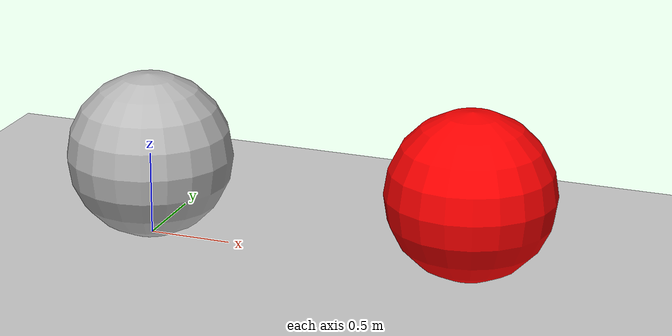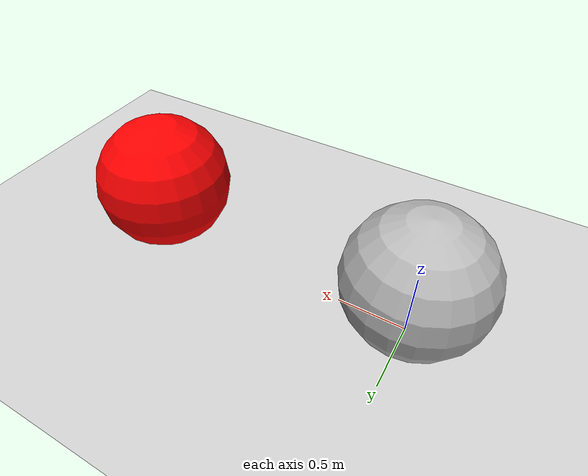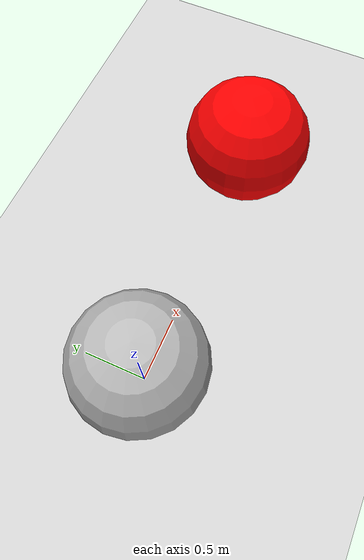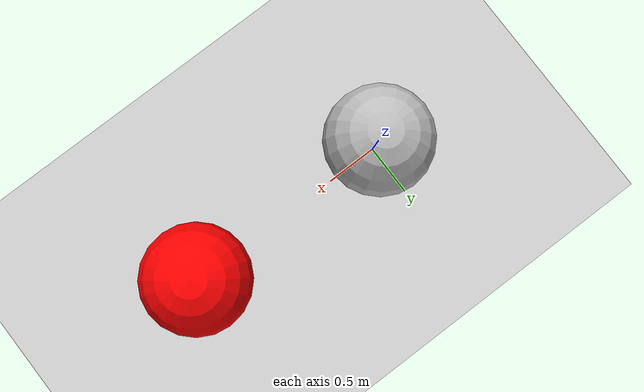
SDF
<?xml version="1.0" ?>
<sdf version="1.4">
	<world name="lms_world">
		<include>
			<uri>model://sun</uri>
		</include>
		<include>
			<uri>model://ground_plane</uri>
		</include>

        <include>
            <uri>model://sphere</uri>
            <pose> 0 0 0 0 0 0 </pose>
        </include>

        <include>
            <uri>model://magnetic_sphere</uri>
            <pose> 2 0 0 0 0 0 </pose>
        </include>

		<plugin name="effect" filename="lib_simulation_world.so"/>

        <physics type='ode'>
            <ode>
                <solver>
                    <type>quick</type>
                    <iters>70</iters>
                </solver>
            </ode>
            <max_step_size>0.001</max_step_size>
            <real_time_factor>1</real_time_factor>
            <real_time_update_rate>1000</real_time_update_rate>
            <gravity>0 0 -9.8</gravity>
        </physics>
	</world>
</sdf>

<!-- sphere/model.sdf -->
<sdf version="1.4">
  <model name="sphere">
    <static>0</static>
    <self_collide>1</self_collide>

    <link name="shpere_link">
      <pose> 0 0 0.5 0 0 0 </pose>
      <collision name="sphere_collision">
        <geometry>
          <sphere>
              <radius> 0.5 </radius>
          </sphere>
        </geometry>
      </collision>
      <visual name="sphere_visual">
        <geometry>
          <sphere>
              <radius> 0.5 </radius>
          </sphere>
        </geometry>
      </visual>
    </link>

  </model>
</sdf>

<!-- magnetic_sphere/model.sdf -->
<sdf version="1.4">
  <model name="magnetic_sphere">
    <static>0</static>
    <self_collide>1</self_collide>

    <plugin name="magnetic_effect" filename="lib_magnetic_sphere.so"></plugin>

    <link name="sphere_link">
      <pose> 0 0 0.5 0 0 0 </pose>
      <collision name="sphere_collision">
        <geometry>
          <sphere>
              <radius> 0.5 </radius>
          </sphere>
        </geometry>
      </collision>
      <visual name="sphere_visual">
        <geometry>
          <sphere>
              <radius> 0.5 </radius>
          </sphere>
        </geometry>
        <material>
            <ambient> 1 0 0 1 </ambient>
        </material>
      </visual>
    </link>

  </model>
</sdf>
